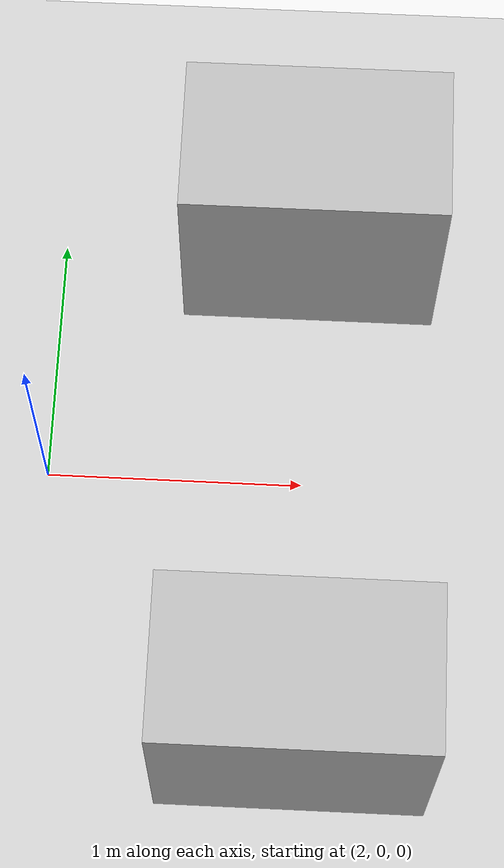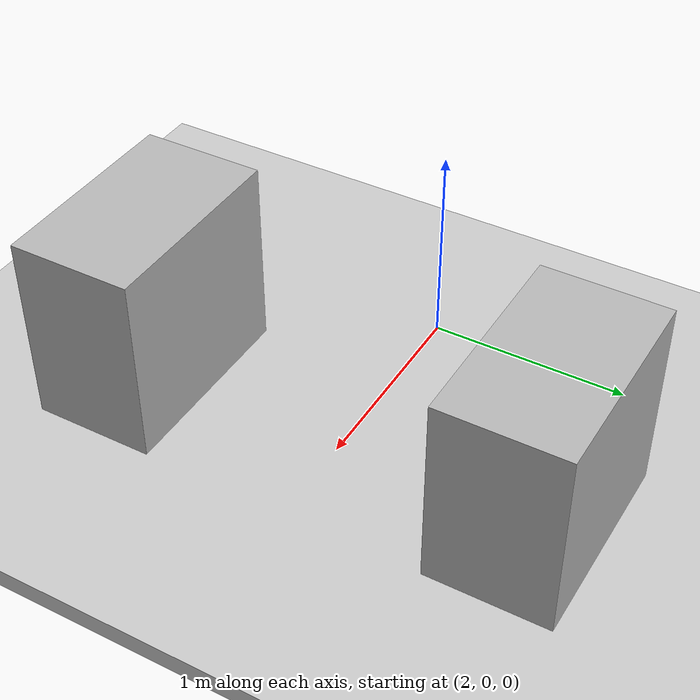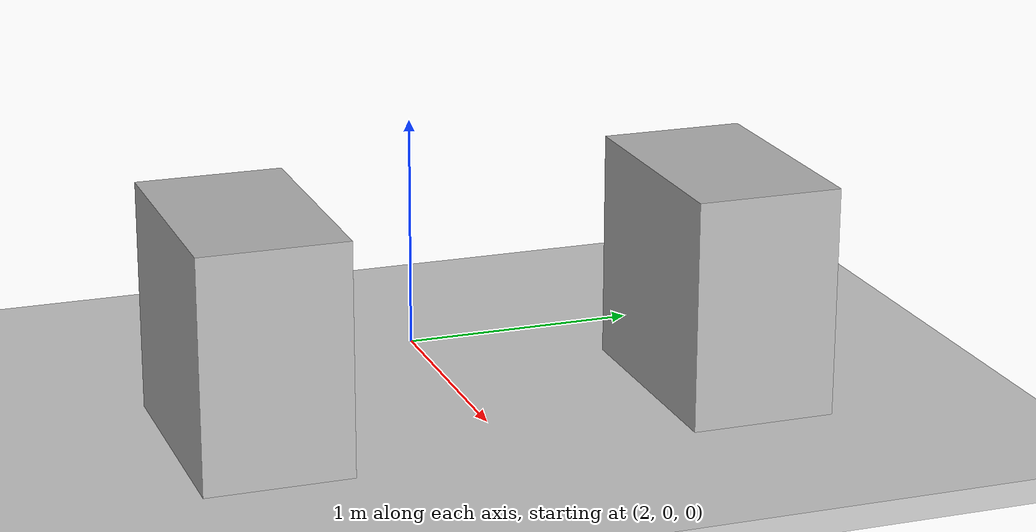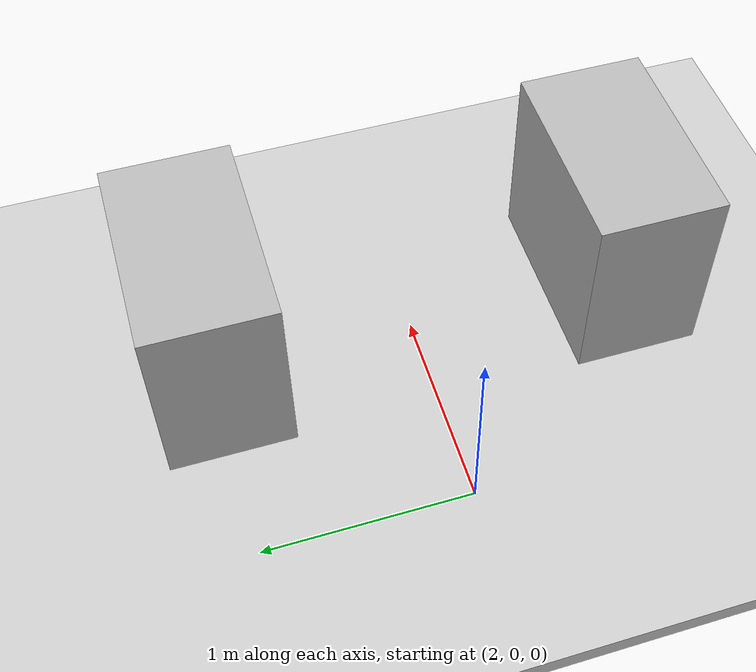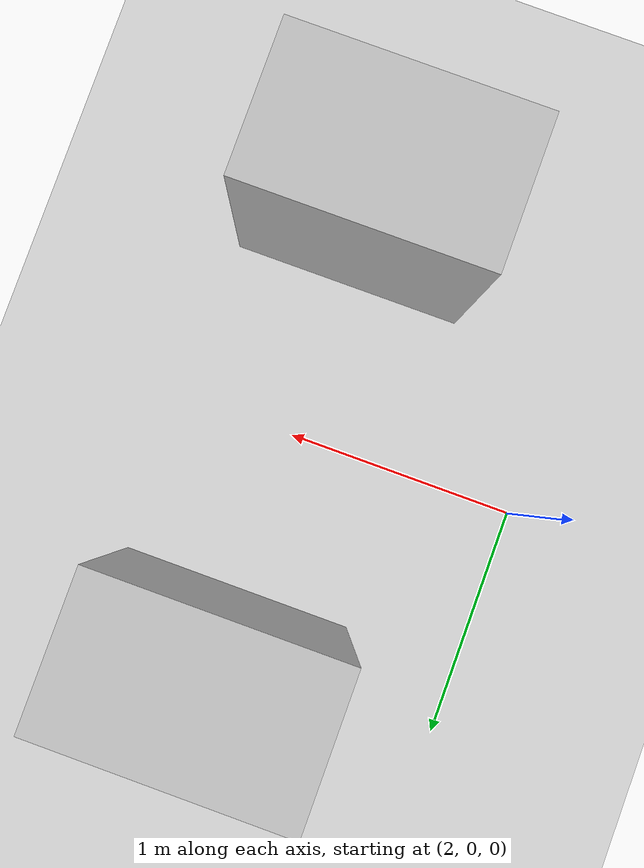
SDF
<?xml version="1.0" ?>
<sdf version="1.7">
  <world name="warehouse_world">
    <gravity>0 0 -9.8</gravity>
    <include><uri>model://ground_plane</uri></include>
    <include><uri>model://sun</uri></include>

    <model name="warehouse_floor">
      <static>true</static>
      <link name="floor_link">
        <collision name="floor_collision">
          <geometry><box><size>20 20 0.1</size></box></geometry>
        </collision>
        <visual name="floor_visual">
          <geometry><box><size>20 20 0.1</size></box></geometry>
          <material><ambient>0.8 0.8 0.8 1</ambient></material>
        </visual>
      </link>
    </model>

    <model name="shelf_a">
      <static>true</static>
      <pose>3.0 1.0 0.5 0 0 0</pose>
      <link name="link">
        <collision name="collision"><geometry><box><size>1.0 0.6 1.0</size></box></geometry></collision>
        <visual name="visual"><geometry><box><size>1.0 0.6 1.0</size></box></geometry></visual>
      </link>
    </model>

    <model name="shelf_b">
      <static>true</static>
      <pose>3.0 -1.0 0.5 0 0 0</pose>
      <link name="link">
        <collision name="collision"><geometry><box><size>1.0 0.6 1.0</size></box></geometry></collision>
        <visual name="visual"><geometry><box><size>1.0 0.6 1.0</size></box></geometry></visual>
      </link>
    </model>
  </world>
</sdf>
